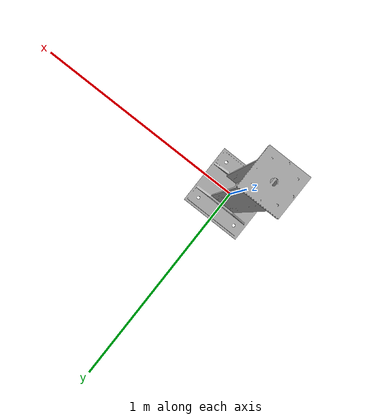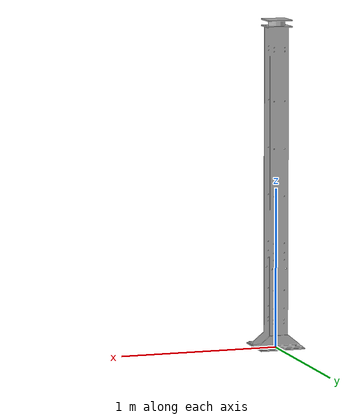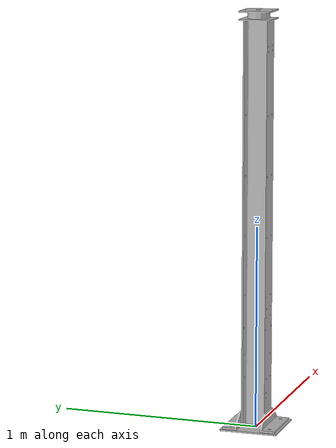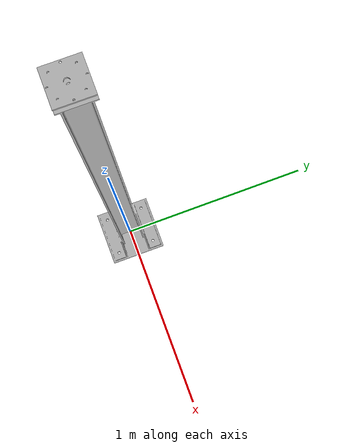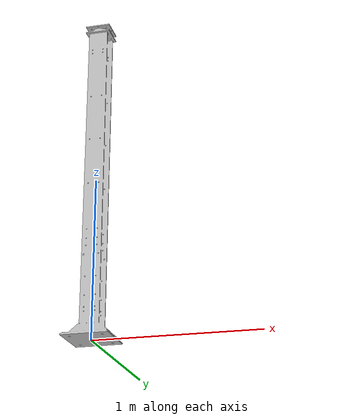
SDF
<?xml version='1.0'?>
<sdf version='1.4'>
  <model name="FGAG2003">
 <static>false</static>
 <link name="mesh_link">
	<inertial>
            <mass>100.0</mass>
 	</inertial>
        <visual name="visual">
        <geometry>
            <mesh><uri>model://FGAG2003/meshes/FGAG2003.stl</uri></mesh>
          </geometry>
        </visual>
        <collision name="collision">
          <geometry>
            <mesh><uri>model://FGAG2003/meshes/FGAG2003.stl</uri></mesh>
          </geometry>
        </collision>
      </link>
      <joint name='anchor' type='fixed'>
        <child>mesh_link</child>
        <parent>world</parent>
      </joint>
  </model>
</sdf>
